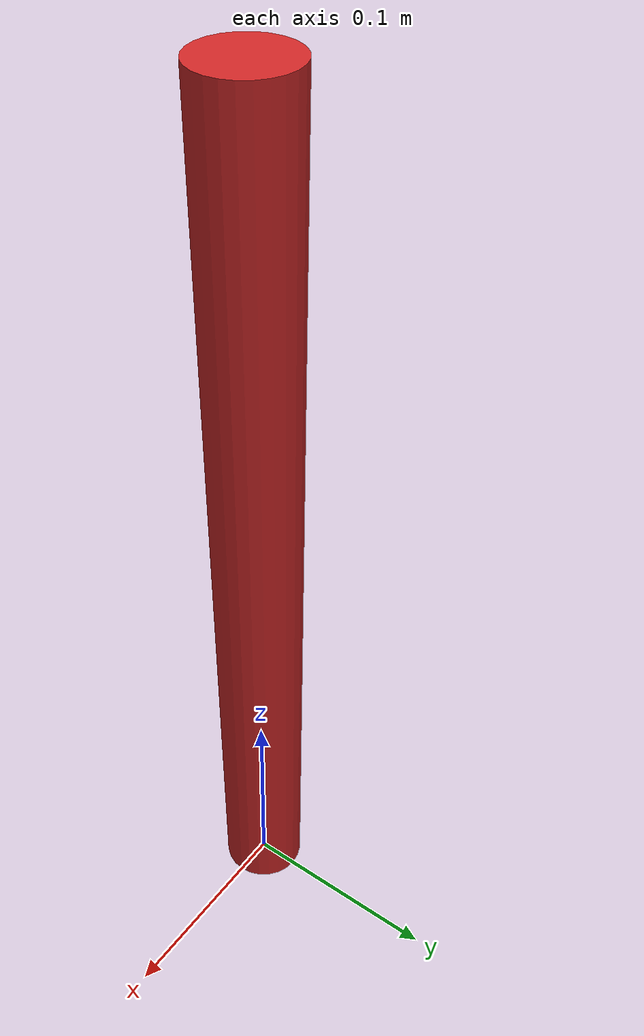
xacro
<?xml version="1.0" encoding="UTF-8"?>
<robot name="cylinder" xmlns:xacro="http://ros.org/wiki/xacro">

<link name="world"/>

<joint name="fixed" type="fixed">
  <parent link="world"/>
  <child link="cylinder"/>
</joint>

<link name="cylinder">
   <visual>
       <geometry>
           <cylinder length="0.42" radius="0.02"/>
        </geometry>
        <origin rpy="0 0 0" xyz="0 0 0.210"/>
        <material name="red"/>
    </visual>
   <collision>
       <geometry>
           <cylinder length="0.42" radius="0.02"/>
        </geometry>
        <origin rpy="0 0 0.0" xyz="0 0 0.210"/>
        <material name="red"/>
    </collision>
    <inertial>
      <mass value=".3"/>
      <inertia ixx="0.1" ixy="0.0" ixz="0.0" iyy="0.1" iyz="0.0" izz="0.1"/>
    </inertial>

</link>

</robot>
